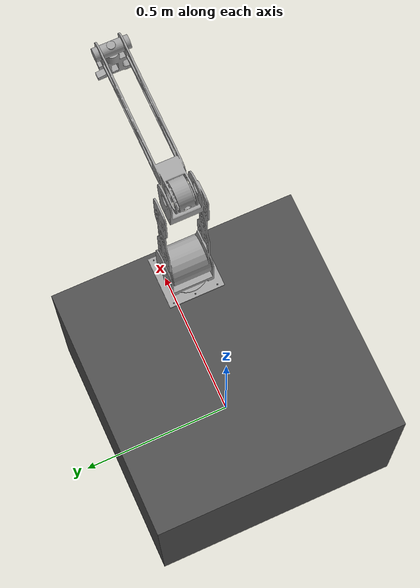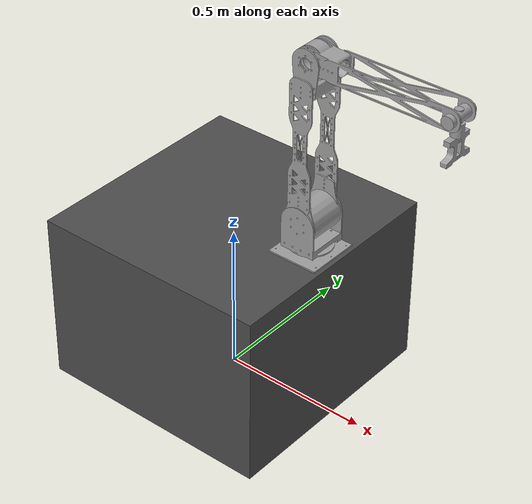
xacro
<?xml version="1.0"?>
<robot xmlns:xacro="http://www.ros.org/wiki/xacro" name="gen5manipulator1">
    <xacro:arg name="initial_positions_file" default="initial_positions.yaml" />

    <!-- Import gen5manipulator1 urdf file -->
    <xacro:include filename="$(find gen5manipulator1)/urdf/gen5manipulator1.urdf" />

    <!-- Import control_xacro -->
    <xacro:include filename="gen5manipulator1.ros2_control.xacro" />

    <xacro:gen5manipulator1_ros2_control name="Gen5Manipulator1" initial_positions_file="$(arg initial_positions_file)"/>

    <gazebo>
        <plugin filename="libign_ros2_control-system.so"
                name="ign_ros2_control::IgnitionROS2ControlPlugin">
            <parameters>$(find moveit_pkg2)/config/ros2_controllers.yaml</parameters>
        </plugin>
    </gazebo>

</robot>

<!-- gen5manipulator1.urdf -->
<robot
  name="gen5manipulator1">

  <link name="world"/>

  <link name="table_link">
    <visual>
      <origin xyz="0 0 0.29" rpy="0 0 0"/>
      <geometry>
        <box size="0.8 0.8 0.58"/>
      </geometry>
      <material name="dark_grey">
        <color rgba="0.3 0.3 0.3 1.0"/>
      </material>
    </visual>
    <collision>
      <origin xyz="0 0 0.29" rpy="0 0 0"/>
        <geometry>
          <box size="0.8 0.8 0.58"/>
        </geometry>
    </collision>
    <inertial>
      <origin xyz="0 0 0.29" rpy="0 0 0"/>
        <mass value="200.0"/>
        <inertia ixx="10.0" ixy="0.0" ixz="0.0" iyy="10.0" iyz="0.0" izz="10.0"/>
      </inertial>
  </link>

  <joint name="world_to_table" type="fixed">
    <parent link="world"/>
    <child link="table_link"/>
    <origin xyz="0 0 0" rpy="0 0 0"/>
  </joint>

  <joint name="table_to_base" type="fixed">
    <parent link="table_link"/>
    <child link="base_link"/>
    <origin xyz="0.3 0 0.58" rpy="0 0 0"/>
  </joint>

  <link
    name="base_link">
    <inertial>
      <origin
        xyz="4.4409E-16 -0.0022485 0.0025"
        rpy="0 0 0" />
      <mass
        value="0.13971" />
      <inertia
        ixx="0.00040797"
        ixy="2.1711E-20"
        ixz="1.0473E-20"
        iyy="0.00036215"
        iyz="8.0772E-19"
        izz="0.00076954" />
    </inertial>
    <visual>
      <origin
        xyz="0 0 0"
        rpy="0 0 0" />
      <geometry>
        <mesh
          filename="package://gen5manipulator1/meshes/base_link.STL" />
      </geometry>
      <material
        name="">
        <color
          rgba="0.62745 0.62745 0.62745 1" />
      </material>
    </visual>
    <collision>
      <origin
        xyz="0 0 0"
        rpy="0 0 0" />
      <geometry>
        <mesh
          filename="package://gen5manipulator1/meshes/base_link.STL" />
      </geometry>
    </collision>
  </link>
  <link
    name="link1_holder">
    <inertial>
      <origin
        xyz="2.4425E-15 -0.00079832 0.053514"
        rpy="0 0 0" />
      <mass
        value="0.50507" />
      <inertia
        ixx="0.0019571"
        ixy="2.2409E-19"
        ixz="-7.774E-18"
        iyy="0.0013156"
        iyz="1.3037E-05"
        izz="0.001843" />
    </inertial>
    <visual>
      <origin
        xyz="0 0 0"
        rpy="0 0 0" />
      <geometry>
        <mesh
          filename="package://gen5manipulator1/meshes/link1_holder.STL" />
      </geometry>
      <material
        name="">
        <color
          rgba="0.62745 0.62745 0.62745 1" />
      </material>
    </visual>
    <collision>
      <origin
        xyz="0 0 0"
        rpy="0 0 0" />
      <geometry>
        <mesh
          filename="package://gen5manipulator1/meshes/link1_holder.STL" />
      </geometry>
    </collision>
  </link>
  <joint
    name="base_rotation"
    type="revolute">
    <origin
      xyz="0 0 0"
      rpy="0 0 0" />
    <parent
      link="base_link" />
    <child
      link="link1_holder" />
    <axis
      xyz="0 0 -1" />
    <limit
      lower="-6.28"
      upper="6.28"
      effort="147.1"
      velocity="5.24" />
  </joint>
  <link
    name="link1">
    <inertial>
      <origin
        xyz="2.6659E-05 -0.074457 0.15905"
        rpy="0 0 0" />
      <mass
        value="1.2478" />
      <inertia
        ixx="0.021234"
        ixy="5.9178E-06"
        ixz="-2.7229E-09"
        iyy="0.020094"
        iyz="-0.00044834"
        izz="0.0034657" />
    </inertial>
    <visual>
      <origin
        xyz="0 0 0"
        rpy="0 0 0" />
      <geometry>
        <mesh
          filename="package://gen5manipulator1/meshes/link1.STL" />
      </geometry>
      <material
        name="">
        <color
          rgba="0.62745 0.62745 0.62745 1" />
      </material>
    </visual>
    <collision>
      <origin
        xyz="0 0 0"
        rpy="0 0 0" />
      <geometry>
        <mesh
          filename="package://gen5manipulator1/meshes/link1.STL" />
      </geometry>
    </collision>
  </link>
  <joint
    name="link1_pitch"
    type="revolute">
    <origin
      xyz="-2.6709E-05 0.068528 0.117"
      rpy="0 0 0" />
    <parent
      link="link1_holder" />
    <child
      link="link1" />
    <axis
      xyz="0 1 0" />
    <limit
      lower="-1.57"
      upper="1.57"
      effort="425"
      velocity="5.24" />
  </joint>
  <link
    name="link2">
    <inertial>
      <origin
        xyz="0.10556 -0.038507 -3.5193E-05"
        rpy="0 0 0" />
      <mass
        value="0.43223" />
      <inertia
        ixx="0.00055499"
        ixy="-7.3973E-08"
        ixz="6.6575E-07"
        iyy="0.0064696"
        iyz="8.6205E-09"
        izz="0.0064785" />
    </inertial>
    <visual>
      <origin
        xyz="0 0 0"
        rpy="0 0 0" />
      <geometry>
        <mesh
          filename="package://gen5manipulator1/meshes/link2.STL" />
      </geometry>
      <material
        name="">
        <color
          rgba="0.62745 0.62745 0.62745 1" />
      </material>
    </visual>
    <collision>
      <origin
        xyz="0 0 0"
        rpy="0 0 0" />
      <geometry>
        <mesh
          filename="package://gen5manipulator1/meshes/link2.STL" />
      </geometry>
    </collision>
  </link>
  <joint
    name="link2_pitch"
    type="revolute">
    <origin
      xyz="2.6709E-05 -0.033 0.525"
      rpy="0 0 0" />
    <parent
      link="link1" />
    <child
      link="link2" />
    <axis
      xyz="0 1 0" />
    <limit
      lower="-3.3"
      upper="0.902"
      effort="147.1"
      velocity="5.24" />
  </joint>
  <link
    name="bevel_1">
    <inertial>
      <origin
        xyz="2.5783E-07 0.053 7.2327E-07"
        rpy="0 0 0" />
      <mass
        value="0.11458" />
      <inertia
        ixx="0.00013505"
        ixy="-7.6686E-12"
        ixz="2.0603E-09"
        iyy="2.37E-05"
        iyz="-1.0612E-11"
        izz="0.00013662" />
    </inertial>
    <visual>
      <origin
        xyz="0 0 0"
        rpy="0 0 0" />
      <geometry>
        <mesh
          filename="package://gen5manipulator1/meshes/bevel_1.STL" />
      </geometry>
      <material
        name="">
        <color
          rgba="0.62745 0.62745 0.62745 1" />
      </material>
    </visual>
    <collision>
      <origin
        xyz="0 0 0"
        rpy="0 0 0" />
      <geometry>
        <mesh
          filename="package://gen5manipulator1/meshes/bevel_1.STL" />
      </geometry>
    </collision>
  </link>
  <joint
    name="bevel_pitch"
    type="revolute">
    <origin
      xyz="0.46947 -0.091 -0.00010018"
      rpy="0 0 0" />
    <parent
      link="link2" />
    <child
      link="bevel_1" />
    <axis
      xyz="0 1 0" />
    <limit
      lower="-3.3"
      upper="0.3"
      effort="300"
      velocity="5.23" />
  </joint>
  <link
    name="bevel_2">
    <inertial>
      <origin
        xyz="2.9416E-09 -4.2769E-08 -0.086097"
        rpy="0 0 0" />
      <mass
        value="0.15096" />
      <inertia
        ixx="0.00032739"
        ixy="2.1736E-12"
        ixz="1.241E-12"
        iyy="0.00027091"
        iyz="-1.5795E-10"
        izz="7.3161E-05" />
    </inertial>
    <visual>
      <origin
        xyz="0 0 0"
        rpy="0 0 0" />
      <geometry>
        <mesh
          filename="package://gen5manipulator1/meshes/bevel_2.STL" />
      </geometry>
      <material
        name="">
        <color
          rgba="0.62745 0.62745 0.62745 1" />
      </material>
    </visual>
    <collision>
      <origin
        xyz="0 0 0"
        rpy="0 0 0" />
      <geometry>
        <mesh
          filename="package://gen5manipulator1/meshes/bevel_2.STL" />
      </geometry>
    </collision>
  </link>
  <joint
    name="bevel_roll"
    type="revolute">
    <origin
      xyz="2.3571E-05 0.053 0.02"
      rpy="0 0.0011785 0" />
    <parent
      link="bevel_1" />
    <child
      link="bevel_2" />
    <axis
      xyz="0 0 1" />
    <limit
      lower="-6.28"
      upper="6.28"
      effort="300"
      velocity="5.24" />
  </joint>

  <!--Dummy link-->
  <link name="dummy_ee_link">
    <inertial>
        <origin xyz="0 0 0" rpy="0 0 0"/>
        <mass value="0.001"/> <inertia ixx="0.000001" ixy="0.0" ixz="0.0" iyy="0.000001" iyz="0.0" izz="0.000001"/>
    </inertial>

  </link>

  <joint name="bevel2_to_dummy_ee" type="fixed">
    <parent link="bevel_2"/>
    <child link="dummy_ee_link"/>
    <origin xyz="0 0 -0.15" rpy="0 0 0"/>
  </joint>
</robot>
